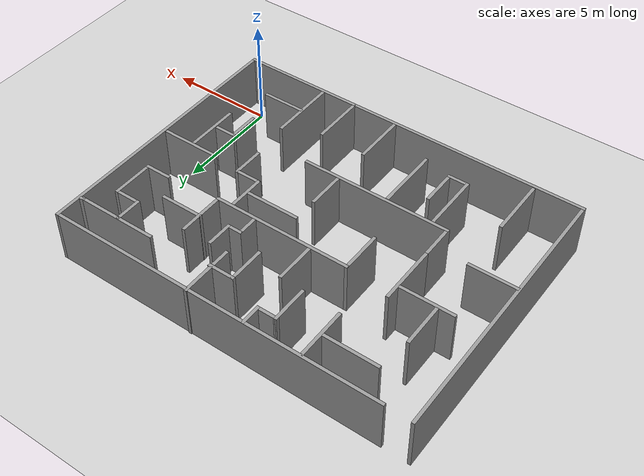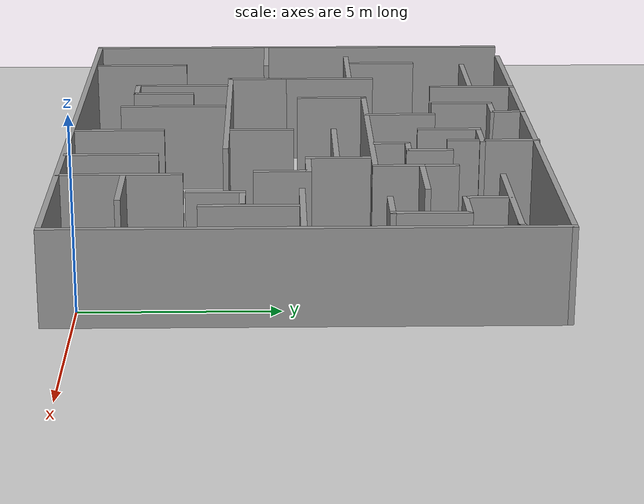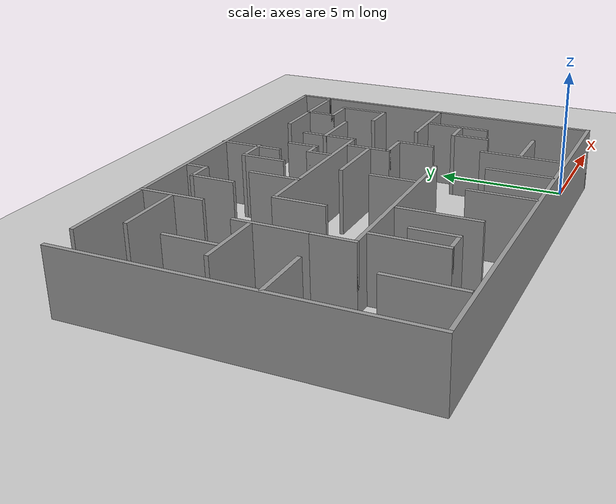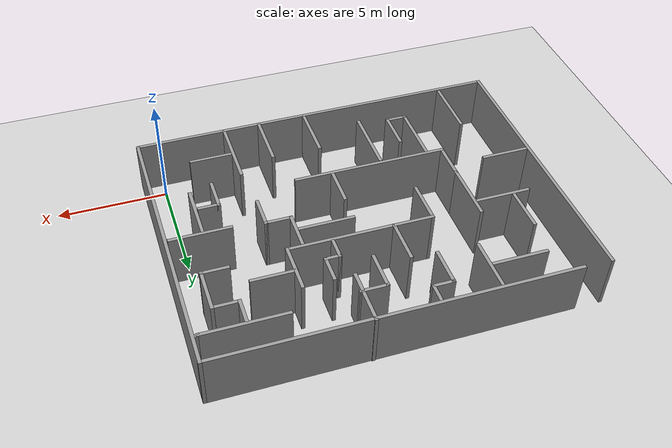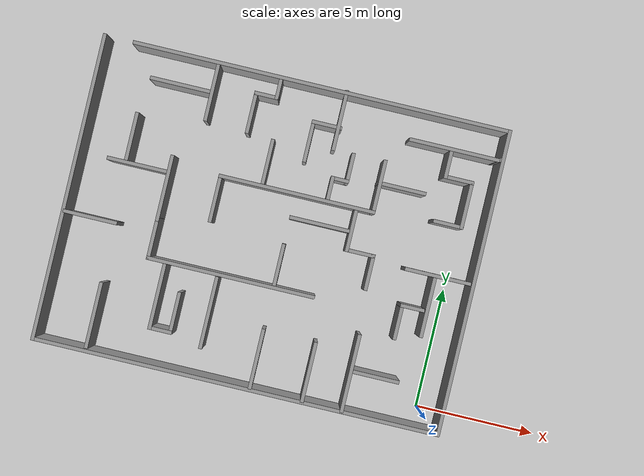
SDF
<sdf version="1.7">
 <world name="default">
  <light name="sun" type="directional">
   <pose>0 0 10 0 -0 0</pose>
   <diffuse>0.8 0.8 0.8 1</diffuse>
   <specular>0.2 0.2 0.2 1</specular>
   <attenuation>
    <range>1000</range>
    <constant>0.9</constant>
    <linear>0.01</linear>
    <quadratic>0.001</quadratic>
   </attenuation>
   <direction>-0.5 0.1 -0.9</direction>
   <spot><inner_angle>0</inner_angle><outer_angle>0</outer_angle><falloff>0</falloff></spot>
  </light>
  <model name="ground_plane">
   <static>1</static>
   <link name="link">
    <collision name="collision">
     <geometry><plane><normal>0 0 1</normal><size>100 100</size></plane></geometry>
     <surface><friction><ode><mu>100</mu><mu2>50</mu2></ode></friction></surface>
    </collision>
    <visual name="visual">
     <cast_shadows>0</cast_shadows>
     <geometry><plane><normal>0 0 1</normal><size>100 100</size></plane></geometry>
     <material>
      <script><uri>file://media/materials/scripts/gazebo.material</uri><name>Gazebo/Grey</name></script>
     </material>
    </visual>
   </link>
  </model>
  <gravity>0 0 -9.8</gravity>
  <magnetic_field>6e-06 2.3e-05 -4.2e-05</magnetic_field>
  <atmosphere type="adiabatic"/>
  <physics type="ode">
   <max_step_size>0.001</max_step_size>
   <real_time_factor>1</real_time_factor>
   <real_time_update_rate>1000</real_time_update_rate>
  </physics>
  <scene><ambient>0.4 0.4 0.4 1</ambient><background>0.7 0.7 0.7 1</background><shadows>1</shadows></scene>
  <audio><device>default</device></audio>
  <spherical_coordinates>
   <surface_model>EARTH_WGS84</surface_model>
   <latitude_deg>0</latitude_deg>
   <longitude_deg>0</longitude_deg>
   <elevation>0</elevation>
   <heading_deg>0</heading_deg>
  </spherical_coordinates>
  <model name="own_made_maze">
   <pose>-7.52865 5.59252 0 0 -0 0</pose>
   <link name="Wall_1">
    <collision name="Wall_1_Collision">
     <geometry><box><size>2.75 0.15 2.5</size></box></geometry>
     <pose>0 0 1.25 0 -0 0</pose>
    </collision>
    <visual name="Wall_1_Visual">
     <pose>0 0 1.25 0 -0 0</pose>
     <geometry><box><size>2.75 0.15 2.5</size></box></geometry>
     <material>
      <script><uri>file://media/materials/scripts/gazebo.material</uri><name>Gazebo/Grey</name></script>
      <ambient>1 1 1 1</ambient>
     </material>
     <meta><layer>0</layer></meta>
    </visual>
    <pose>-4.63332 0.834786 0 0 -0 -1.5708</pose>
   </link>
   <link name="Wall_10">
    <collision name="Wall_10_Collision">
     <geometry><box><size>12.75 0.15 2.5</size></box></geometry>
     <pose>0 0 1.25 0 -0 0</pose>
    </collision>
    <visual name="Wall_10_Visual">
     <pose>0 0 1.25 0 -0 0</pose>
     <geometry><box><size>12.75 0.15 2.5</size></box></geometry>
     <material>
      <script><uri>file://media/materials/scripts/gazebo.material</uri><name>Gazebo/Grey</name></script>
      <ambient>1 1 1 1</ambient>
     </material>
     <meta><layer>0</layer></meta>
    </visual>
    <pose>8.425 -0.017589 0 0 -0 1.5708</pose>
   </link>
   <link name="Wall_11">
    <collision name="Wall_11_Collision">
     <geometry><box><size>15.75 0.15 2.5</size></box></geometry>
     <pose>0 0 1.25 0 -0 0</pose>
    </collision>
    <visual name="Wall_11_Visual">
     <pose>0 0 1.25 0 -0 0</pose>
     <geometry><box><size>15.75 0.15 2.5</size></box></geometry>
     <material>
      <script><uri>file://media/materials/scripts/gazebo.material</uri><name>Gazebo/Grey</name></script>
      <ambient>1 1 1 1</ambient>
     </material>
     <meta><layer>0</layer></meta>
    </visual>
    <pose>0.625 6.28241 0 0 -0 3.14159</pose>
   </link>
   <link name="Wall_13">
    <collision name="Wall_13_Collision">
     <geometry><box><size>1.75 0.15 2.5</size></box></geometry>
     <pose>0 0 1.25 0 -0 0</pose>
    </collision>
    <visual name="Wall_13_Visual">
     <pose>0 0 1.25 0 -0 0</pose>
     <geometry><box><size>1.75 0.15 2.5</size></box></geometry>
     <material>
      <script><uri>file://media/materials/scripts/gazebo.material</uri><name>Gazebo/Grey</name></script>
      <ambient>1 1 1 1</ambient>
     </material>
     <meta><layer>0</layer></meta>
    </visual>
    <pose>-4.63332 -1.26521 0 0 -0 -1.5708</pose>
   </link>
   <link name="Wall_14">
    <collision name="Wall_14_Collision">
     <geometry><box><size>7 0.15 2.5</size></box></geometry>
     <pose>0 0 1.25 0 -0 0</pose>
    </collision>
    <visual name="Wall_14_Visual">
     <pose>0 0 1.25 0 -0 0</pose>
     <geometry><box><size>7 0.15 2.5</size></box></geometry>
     <material>
      <script><uri>file://media/materials/scripts/gazebo.material</uri><name>Gazebo/Grey</name></script>
      <ambient>1 1 1 1</ambient>
     </material>
     <meta><layer>0</layer></meta>
    </visual>
    <pose>-1.20832 -2.06521 0 0 -0 0</pose>
   </link>
   <link name="Wall_17">
    <collision name="Wall_17_Collision">
     <geometry><box><size>1.75 0.15 2.5</size></box></geometry>
     <pose>0 0 1.25 0 -0 0</pose>
    </collision>
    <visual name="Wall_17_Visual">
     <pose>0 0 1.25 0 -0 0</pose>
     <geometry><box><size>1.75 0.15 2.5</size></box></geometry>
     <material>
      <script><uri>file://media/materials/scripts/gazebo.material</uri><name>Gazebo/Grey</name></script>
      <ambient>1 1 1 1</ambient>
     </material>
     <meta><layer>0</layer></meta>
    </visual>
    <pose>0.580763 -1.11424 0 0 -0 1.5708</pose>
   </link>
   <link name="Wall_19">
    <collision name="Wall_19_Collision">
     <geometry><box><size>2 0.15 2.5</size></box></geometry>
     <pose>0 0 1.25 0 -0 0</pose>
    </collision>
    <visual name="Wall_19_Visual">
     <pose>0 0 1.25 0 -0 0</pose>
     <geometry><box><size>2 0.15 2.5</size></box></geometry>
     <material>
      <script><uri>file://media/materials/scripts/gazebo.material</uri><name>Gazebo/Grey</name></script>
      <ambient>1 1 1 1</ambient>
     </material>
     <meta><layer>0</layer></meta>
    </visual>
    <pose>-2.55015 0.910413 0 0 -0 1.5708</pose>
   </link>
   <link name="Wall_20">
    <collision name="Wall_20_Collision">
     <geometry><box><size>6.5 0.15 2.5</size></box></geometry>
     <pose>0 0 1.25 0 -0 0</pose>
    </collision>
    <visual name="Wall_20_Visual">
     <pose>0 0 1.25 0 -0 0</pose>
     <geometry><box><size>6.5 0.15 2.5</size></box></geometry>
     <material>
      <script><uri>file://media/materials/scripts/gazebo.material</uri><name>Gazebo/Grey</name></script>
      <ambient>1 1 1 1</ambient>
     </material>
     <meta><layer>0</layer></meta>
    </visual>
    <pose>0.624853 1.83541 0 0 -0 0</pose>
   </link>
   <link name="Wall_21">
    <collision name="Wall_21_Collision">
     <geometry><box><size>2.25 0.15 2.5</size></box></geometry>
     <pose>0 0 1.25 0 -0 0</pose>
    </collision>
    <visual name="Wall_21_Visual">
     <pose>0 0 1.25 0 -0 0</pose>
     <geometry><box><size>2.25 0.15 2.5</size></box></geometry>
     <material>
      <script><uri>file://media/materials/scripts/gazebo.material</uri><name>Gazebo/Grey</name></script>
      <ambient>1 1 1 1</ambient>
     </material>
     <meta><layer>0</layer></meta>
    </visual>
    <pose>3.79985 2.88541 0 0 -0 1.5708</pose>
   </link>
   <link name="Wall_23">
    <collision name="Wall_23_Collision">
     <geometry><box><size>2 0.15 2.5</size></box></geometry>
     <pose>0 0 1.25 0 -0 0</pose>
    </collision>
    <visual name="Wall_23_Visual">
     <pose>0 0 1.25 0 -0 0</pose>
     <geometry><box><size>2 0.15 2.5</size></box></geometry>
     <material>
      <script><uri>file://media/materials/scripts/gazebo.material</uri><name>Gazebo/Grey</name></script>
      <ambient>1 1 1 1</ambient>
     </material>
     <meta><layer>0</layer></meta>
    </visual>
    <pose>-0.826387 2.77489 0 0 -0 1.5708</pose>
   </link>
   <link name="Wall_27">
    <collision name="Wall_27_Collision">
     <geometry><box><size>2.5 0.15 2.5</size></box></geometry>
     <pose>0 0 1.25 0 -0 0</pose>
    </collision>
    <visual name="Wall_27_Visual">
     <pose>0 0 1.25 0 -0 0</pose>
     <geometry><box><size>2.5 0.15 2.5</size></box></geometry>
     <material>
      <script><uri>file://media/materials/scripts/gazebo.material</uri><name>Gazebo/Grey</name></script>
      <ambient>1 1 1 1</ambient>
     </material>
     <meta><layer>0</layer></meta>
    </visual>
    <pose>-3.67587 5.10741 0 0 -0 -1.5708</pose>
   </link>
   <link name="Wall_29">
    <collision name="Wall_29_Collision">
     <geometry><box><size>2.5 0.15 2.5</size></box></geometry>
     <pose>0 0 1.25 0 -0 0</pose>
    </collision>
    <visual name="Wall_29_Visual">
     <pose>0 0 1.25 0 -0 0</pose>
     <geometry><box><size>2.5 0.15 2.5</size></box></geometry>
     <material>
      <script><uri>file://media/materials/scripts/gazebo.material</uri><name>Gazebo/Grey</name></script>
      <ambient>1 1 1 1</ambient>
     </material>
     <meta><layer>0</layer></meta>
    </visual>
    <pose>1.63613 5.14259 0 0 -0 -1.5708</pose>
   </link>
   <link name="Wall_31">
    <collision name="Wall_31_Collision">
     <geometry><box><size>2.75 0.15 2.5</size></box></geometry>
     <pose>0 0 1.25 0 -0 0</pose>
    </collision>
    <visual name="Wall_31_Visual">
     <pose>0 0 1.25 0 -0 0</pose>
     <geometry><box><size>2.75 0.15 2.5</size></box></geometry>
     <material>
      <script><uri>file://media/materials/scripts/gazebo.material</uri><name>Gazebo/Grey</name></script>
      <ambient>1 1 1 1</ambient>
     </material>
     <meta><layer>0</layer></meta>
    </visual>
    <pose>6.94973 -0.084945 0 0 -0 3.14159</pose>
   </link>
   <link name="Wall_35">
    <collision name="Wall_35_Collision">
     <geometry><box><size>2 0.15 2.5</size></box></geometry>
     <pose>0 0 1.25 0 -0 0</pose>
    </collision>
    <visual name="Wall_35_Visual">
     <pose>0 0 1.25 0 -0 0</pose>
     <geometry><box><size>2 0.15 2.5</size></box></geometry>
     <material>
      <script><uri>file://media/materials/scripts/gazebo.material</uri><name>Gazebo/Grey</name></script>
      <ambient>1 1 1 1</ambient>
     </material>
     <meta><layer>0</layer></meta>
    </visual>
    <pose>4.70703 3.04596 0 0 -0 0</pose>
   </link>
   <link name="Wall_37">
    <collision name="Wall_37_Collision">
     <geometry><box><size>3.75 0.15 2.5</size></box></geometry>
     <pose>0 0 1.25 0 -0 0</pose>
    </collision>
    <visual name="Wall_37_Visual">
     <pose>0 0 1.25 0 -0 0</pose>
     <geometry><box><size>3.75 0.15 2.5</size></box></geometry>
     <material>
      <script><uri>file://media/materials/scripts/gazebo.material</uri><name>Gazebo/Grey</name></script>
      <ambient>1 1 1 1</ambient>
     </material>
     <meta><layer>0</layer></meta>
    </visual>
    <pose>6.41456 5.05115 0 0 -0 3.14159</pose>
   </link>
   <link name="Wall_39">
    <collision name="Wall_39_Collision">
     <geometry><box><size>0.25 0.15 2.5</size></box></geometry>
     <pose>0 0 1.25 0 -0 0</pose>
    </collision>
    <visual name="Wall_39_Visual">
     <pose>0 0 1.25 0 -0 0</pose>
     <geometry><box><size>0.25 0.15 2.5</size></box></geometry>
     <material>
      <script><uri>file://media/materials/scripts/gazebo.material</uri><name>Gazebo/Grey</name></script>
      <ambient>1 1 1 1</ambient>
     </material>
     <meta><layer>0</layer></meta>
    </visual>
    <pose>8.26285 5.0641 0 0 -0 0.261799</pose>
   </link>
   <link name="Wall_41">
    <collision name="Wall_41_Collision">
     <geometry><box><size>3.25 0.15 2.5</size></box></geometry>
     <pose>0 0 1.25 0 -0 0</pose>
    </collision>
    <visual name="Wall_41_Visual">
     <pose>0 0 1.25 0 -0 0</pose>
     <geometry><box><size>3.25 0.15 2.5</size></box></geometry>
     <material>
      <script><uri>file://media/materials/scripts/gazebo.material</uri><name>Gazebo/Grey</name></script>
      <ambient>1 1 1 1</ambient>
     </material>
     <meta><layer>0</layer></meta>
    </visual>
    <pose>4.41525 -4.72641 0 0 -0 1.5708</pose>
   </link>
   <link name="Wall_43">
    <collision name="Wall_43_Collision">
     <geometry><box><size>3 0.15 2.5</size></box></geometry>
     <pose>0 0 1.25 0 -0 0</pose>
    </collision>
    <visual name="Wall_43_Visual">
     <pose>0 0 1.25 0 -0 0</pose>
     <geometry><box><size>3 0.15 2.5</size></box></geometry>
     <material>
      <script><uri>file://media/materials/scripts/gazebo.material</uri><name>Gazebo/Grey</name></script>
      <ambient>1 1 1 1</ambient>
     </material>
     <meta><layer>0</layer></meta>
    </visual>
    <pose>-1.74104 -3.65585 0 0 -0 -1.5708</pose>
   </link>
   <link name="Wall_45">
    <collision name="Wall_45_Collision">
     <geometry><box><size>2.75 0.15 2.5</size></box></geometry>
     <pose>0 0 1.25 0 -0 0</pose>
    </collision>
    <visual name="Wall_45_Visual">
     <pose>0 0 1.25 0 -0 0</pose>
     <geometry><box><size>2.75 0.15 2.5</size></box></geometry>
     <material>
      <script><uri>file://media/materials/scripts/gazebo.material</uri><name>Gazebo/Grey</name></script>
      <ambient>1 1 1 1</ambient>
     </material>
     <meta><layer>0</layer></meta>
    </visual>
    <pose>-6.24392 -4.83569 0 0 -0 1.5708</pose>
   </link>
   <link name="Wall_48">
    <collision name="Wall_48_Collision">
     <geometry><box><size>2.25 0.15 2.5</size></box></geometry>
     <pose>0 0 1.25 0 -0 0</pose>
    </collision>
    <visual name="Wall_48_Visual">
     <pose>0 0 1.25 0 -0 0</pose>
     <geometry><box><size>2.25 0.15 2.5</size></box></geometry>
     <material>
      <script><uri>file://media/materials/scripts/gazebo.material</uri><name>Gazebo/Grey</name></script>
      <ambient>1 1 1 1</ambient>
     </material>
     <meta><layer>0</layer></meta>
    </visual>
    <pose>-7.30464 -0.999593 0 0 -0 0</pose>
   </link>
   <link name="Wall_50">
    <collision name="Wall_50_Collision">
     <geometry><box><size>2.5 0.15 2.5</size></box></geometry>
     <pose>0 0 1.25 0 -0 0</pose>
    </collision>
    <visual name="Wall_50_Visual">
     <pose>0 0 1.25 0 -0 0</pose>
     <geometry><box><size>2.5 0.15 2.5</size></box></geometry>
     <material>
      <script><uri>file://media/materials/scripts/gazebo.material</uri><name>Gazebo/Grey</name></script>
      <ambient>1 1 1 1</ambient>
     </material>
     <meta><layer>0</layer></meta>
    </visual>
    <pose>-5.94141 1.4981 0 0 -0 3.14159</pose>
   </link>
   <link name="Wall_52">
    <collision name="Wall_52_Collision">
     <geometry><box><size>2.5 0.15 2.5</size></box></geometry>
     <pose>0 0 1.25 0 -0 0</pose>
    </collision>
    <visual name="Wall_52_Visual">
     <pose>0 0 1.25 0 -0 0</pose>
     <geometry><box><size>2.5 0.15 2.5</size></box></geometry>
     <material>
      <script><uri>file://media/materials/scripts/gazebo.material</uri><name>Gazebo/Grey</name></script>
      <ambient>1 1 1 1</ambient>
     </material>
     <meta><layer>0</layer></meta>
    </visual>
    <pose>-4.99158 5.05115 0 0 -0 3.14159</pose>
   </link>
   <link name="Wall_54">
    <collision name="Wall_54_Collision">
     <geometry><box><size>2 0.15 2.5</size></box></geometry>
     <pose>0 0 1.25 0 -0 0</pose>
    </collision>
    <visual name="Wall_54_Visual">
     <pose>0 0 1.25 0 -0 0</pose>
     <geometry><box><size>2 0.15 2.5</size></box></geometry>
     <material>
      <script><uri>file://media/materials/scripts/gazebo.material</uri><name>Gazebo/Grey</name></script>
      <ambient>1 1 1 1</ambient>
     </material>
     <meta><layer>0</layer></meta>
    </visual>
    <pose>-6.41981 2.56381 0 0 -0 1.5708</pose>
   </link>
   <link name="Wall_56">
    <collision name="Wall_56_Collision">
     <geometry><box><size>2 0.15 2.5</size></box></geometry>
     <pose>0 0 1.25 0 -0 0</pose>
    </collision>
    <visual name="Wall_56_Visual">
     <pose>0 0 1.25 0 -0 0</pose>
     <geometry><box><size>2 0.15 2.5</size></box></geometry>
     <material>
      <script><uri>file://media/materials/scripts/gazebo.material</uri><name>Gazebo/Grey</name></script>
      <ambient>1 1 1 1</ambient>
     </material>
     <meta><layer>0</layer></meta>
    </visual>
    <pose>5.41061 -4.62301 0 0 -0 0</pose>
   </link>
   <link name="Wall_58">
    <collision name="Wall_58_Collision">
     <geometry><box><size>2.5 0.15 2.5</size></box></geometry>
     <pose>0 0 1.25 0 -0 0</pose>
    </collision>
    <visual name="Wall_58_Visual">
     <pose>0 0 1.25 0 -0 0</pose>
     <geometry><box><size>2.5 0.15 2.5</size></box></geometry>
     <material>
      <script><uri>file://media/materials/scripts/gazebo.material</uri><name>Gazebo/Grey</name></script>
      <ambient>1 1 1 1</ambient>
     </material>
     <meta><layer>0</layer></meta>
    </visual>
    <pose>6.84258 -1.40066 0 0 -0 -1.5708</pose>
   </link>
   <link name="Wall_60">
    <collision name="Wall_60_Collision">
     <geometry><box><size>2.5 0.15 2.5</size></box></geometry>
     <pose>0 0 1.25 0 -0 0</pose>
    </collision>
    <visual name="Wall_60_Visual">
     <pose>0 0 1.25 0 -0 0</pose>
     <geometry><box><size>2.5 0.15 2.5</size></box></geometry>
     <material>
      <script><uri>file://media/materials/scripts/gazebo.material</uri><name>Gazebo/Grey</name></script>
      <ambient>1 1 1 1</ambient>
     </material>
     <meta><layer>0</layer></meta>
    </visual>
    <pose>2.76185 -5.06623 0 0 -0 1.5708</pose>
   </link>
   <link name="Wall_62">
    <collision name="Wall_62_Collision">
     <geometry><box><size>1.75 0.15 2.5</size></box></geometry>
     <pose>0 0 1.25 0 -0 0</pose>
    </collision>
    <visual name="Wall_62_Visual">
     <pose>0 0 1.25 0 -0 0</pose>
     <geometry><box><size>1.75 0.15 2.5</size></box></geometry>
     <material>
      <script><uri>file://media/materials/scripts/gazebo.material</uri><name>Gazebo/Grey</name></script>
      <ambient>1 1 1 1</ambient>
     </material>
     <meta><layer>0</layer></meta>
    </visual>
    <pose>3.11363 0.909172 0 0 -0 -1.5708</pose>
   </link>
   <link name="Wall_63">
    <collision name="Wall_63_Collision">
     <geometry><box><size>1.25 0.15 2.5</size></box></geometry>
     <pose>0 0 1.25 0 -0 0</pose>
    </collision>
    <visual name="Wall_63_Visual">
     <pose>0 0 1.25 0 -0 0</pose>
     <geometry><box><size>1.25 0.15 2.5</size></box></geometry>
     <material>
      <script><uri>file://media/materials/scripts/gazebo.material</uri><name>Gazebo/Grey</name></script>
      <ambient>1 1 1 1</ambient>
     </material>
     <meta><layer>0</layer></meta>
    </visual>
    <pose>3.66363 0.109172 0 0 -0 0</pose>
   </link>
   <link name="Wall_64">
    <collision name="Wall_64_Collision">
     <geometry><box><size>1.5 0.15 2.5</size></box></geometry>
     <pose>0 0 1.25 0 -0 0</pose>
    </collision>
    <visual name="Wall_64_Visual">
     <pose>0 0 1.25 0 -0 0</pose>
     <geometry><box><size>1.5 0.15 2.5</size></box></geometry>
     <material>
      <script><uri>file://media/materials/scripts/gazebo.material</uri><name>Gazebo/Grey</name></script>
      <ambient>1 1 1 1</ambient>
     </material>
     <meta><layer>0</layer></meta>
    </visual>
    <pose>4.21363 -0.565828 0 0 -0 -1.5708</pose>
   </link>
   <link name="Wall_66">
    <collision name="Wall_66_Collision">
     <geometry><box><size>2.5 0.15 2.5</size></box></geometry>
     <pose>0 0 1.25 0 -0 0</pose>
    </collision>
    <visual name="Wall_66_Visual">
     <pose>0 0 1.25 0 -0 0</pose>
     <geometry><box><size>2.5 0.15 2.5</size></box></geometry>
     <material>
      <script><uri>file://media/materials/scripts/gazebo.material</uri><name>Gazebo/Grey</name></script>
      <ambient>1 1 1 1</ambient>
     </material>
     <meta><layer>0</layer></meta>
    </visual>
    <pose>1.79792 0.864882 0 0 -0 3.14159</pose>
   </link>
   <link name="Wall_68">
    <collision name="Wall_68_Collision">
     <geometry><box><size>2.5 0.15 2.5</size></box></geometry>
     <pose>0 0 1.25 0 -0 0</pose>
    </collision>
    <visual name="Wall_68_Visual">
     <pose>0 0 1.25 0 -0 0</pose>
     <geometry><box><size>2.5 0.15 2.5</size></box></geometry>
     <material>
      <script><uri>file://media/materials/scripts/gazebo.material</uri><name>Gazebo/Grey</name></script>
      <ambient>1 1 1 1</ambient>
     </material>
     <meta><layer>0</layer></meta>
    </visual>
    <pose>0.580763 -5.03105 0 0 -0 1.5708</pose>
   </link>
   <link name="Wall_70">
    <collision name="Wall_70_Collision">
     <geometry><box><size>2.75 0.15 2.5</size></box></geometry>
     <pose>0 0 1.25 0 -0 0</pose>
    </collision>
    <visual name="Wall_70_Visual">
     <pose>0 0 1.25 0 -0 0</pose>
     <geometry><box><size>2.75 0.15 2.5</size></box></geometry>
     <material>
      <script><uri>file://media/materials/scripts/gazebo.material</uri><name>Gazebo/Grey</name></script>
      <ambient>1 1 1 1</ambient>
     </material>
     <meta><layer>0</layer></meta>
    </visual>
    <pose>-3.92212 -3.49567 0 0 -0 -1.5708</pose>
   </link>
   <link name="Wall_71">
    <collision name="Wall_71_Collision">
     <geometry><box><size>1 0.15 2.5</size></box></geometry>
     <pose>0 0 1.25 0 -0 0</pose>
    </collision>
    <visual name="Wall_71_Visual">
     <pose>0 0 1.25 0 -0 0</pose>
     <geometry><box><size>1 0.15 2.5</size></box></geometry>
     <material>
      <script><uri>file://media/materials/scripts/gazebo.material</uri><name>Gazebo/Grey</name></script>
      <ambient>1 1 1 1</ambient>
     </material>
     <meta><layer>0</layer></meta>
    </visual>
    <pose>-3.49712 -4.79567 0 0 -0 0</pose>
   </link>
   <link name="Wall_72">
    <collision name="Wall_72_Collision">
     <geometry><box><size>1.75 0.15 2.5</size></box></geometry>
     <pose>0 0 1.25 0 -0 0</pose>
    </collision>
    <visual name="Wall_72_Visual">
     <pose>0 0 1.25 0 -0 0</pose>
     <geometry><box><size>1.75 0.15 2.5</size></box></geometry>
     <material>
      <script><uri>file://media/materials/scripts/gazebo.material</uri><name>Gazebo/Grey</name></script>
      <ambient>1 1 1 1</ambient>
     </material>
     <meta><layer>0</layer></meta>
    </visual>
    <pose>-3.07212 -3.99567 0 0 -0 1.5708</pose>
   </link>
   <link name="Wall_74">
    <collision name="Wall_74_Collision">
     <geometry><box><size>1.25 0.15 2.5</size></box></geometry>
     <pose>0 0 1.25 0 -0 0</pose>
    </collision>
    <visual name="Wall_74_Visual">
     <pose>0 0 1.25 0 -0 0</pose>
     <geometry><box><size>1.25 0.15 2.5</size></box></geometry>
     <material>
      <script><uri>file://media/materials/scripts/gazebo.material</uri><name>Gazebo/Grey</name></script>
      <ambient>1 1 1 1</ambient>
     </material>
     <meta><layer>0</layer></meta>
    </visual>
    <pose>6.3149 4.46598 0 0 -0 -1.5708</pose>
   </link>
   <link name="Wall_75">
    <collision name="Wall_75_Collision">
     <geometry><box><size>1.25 0.15 2.5</size></box></geometry>
     <pose>0 0 1.25 0 -0 0</pose>
    </collision>
    <visual name="Wall_75_Visual">
     <pose>0 0 1.25 0 -0 0</pose>
     <geometry><box><size>1.25 0.15 2.5</size></box></geometry>
     <material>
      <script><uri>file://media/materials/scripts/gazebo.material</uri><name>Gazebo/Grey</name></script>
      <ambient>1 1 1 1</ambient>
     </material>
     <meta><layer>0</layer></meta>
    </visual>
    <pose>6.8649 3.91597 0 0 -0 0</pose>
   </link>
   <link name="Wall_76">
    <collision name="Wall_76_Collision">
     <geometry><box><size>2 0.15 2.5</size></box></geometry>
     <pose>0 0 1.25 0 -0 0</pose>
    </collision>
    <visual name="Wall_76_Visual">
     <pose>0 0 1.25 0 -0 0</pose>
     <geometry><box><size>2 0.15 2.5</size></box></geometry>
     <material>
      <script><uri>file://media/materials/scripts/gazebo.material</uri><name>Gazebo/Grey</name></script>
      <ambient>1 1 1 1</ambient>
     </material>
     <meta><layer>0</layer></meta>
    </visual>
    <pose>7.4149 2.99098 0 0 -0 -1.5708</pose>
   </link>
   <link name="Wall_77">
    <collision name="Wall_77_Collision">
     <geometry><box><size>1.25 0.15 2.5</size></box></geometry>
     <pose>0 0 1.25 0 -0 0</pose>
    </collision>
    <visual name="Wall_77_Visual">
     <pose>0 0 1.25 0 -0 0</pose>
     <geometry><box><size>1.25 0.15 2.5</size></box></geometry>
     <material>
      <script><uri>file://media/materials/scripts/gazebo.material</uri><name>Gazebo/Grey</name></script>
      <ambient>1 1 1 1</ambient>
     </material>
     <meta><layer>0</layer></meta>
    </visual>
    <pose>6.8649 2.06598 0 0 -0 3.14159</pose>
   </link>
   <link name="Wall_79">
    <collision name="Wall_79_Collision">
     <geometry><box><size>1 0.15 2.5</size></box></geometry>
     <pose>0 0 1.25 0 -0 0</pose>
    </collision>
    <visual name="Wall_79_Visual">
     <pose>0 0 1.25 0 -0 0</pose>
     <geometry><box><size>1 0.15 2.5</size></box></geometry>
     <material>
      <script><uri>file://media/materials/scripts/gazebo.material</uri><name>Gazebo/Grey</name></script>
      <ambient>1 1 1 1</ambient>
     </material>
     <meta><layer>0</layer></meta>
    </visual>
    <pose>6.24169 -1.56245 0 0 -0 3.14159</pose>
   </link>
   <link name="Wall_8">
    <collision name="Wall_8_Collision">
     <geometry><box><size>12.75 0.15 2.5</size></box></geometry>
     <pose>0 0 1.25 0 -0 0</pose>
    </collision>
    <visual name="Wall_8_Visual">
     <pose>0 0 1.25 0 -0 0</pose>
     <geometry><box><size>12.75 0.15 2.5</size></box></geometry>
     <material>
      <script><uri>file://media/materials/scripts/gazebo.material</uri><name>Gazebo/Grey</name></script>
      <ambient>1 1 1 1</ambient>
     </material>
     <meta><layer>0</layer></meta>
    </visual>
    <pose>-8.425 -0.017589 0 0 -0 -1.5708</pose>
   </link>
   <link name="Wall_80">
    <collision name="Wall_80_Collision">
     <geometry><box><size>1.5 0.15 2.5</size></box></geometry>
     <pose>0 0 1.25 0 -0 0</pose>
    </collision>
    <visual name="Wall_80_Visual">
     <pose>0 0 1.25 0 -0 0</pose>
     <geometry><box><size>1.5 0.15 2.5</size></box></geometry>
     <material>
      <script><uri>file://media/materials/scripts/gazebo.material</uri><name>Gazebo/Grey</name></script>
      <ambient>1 1 1 1</ambient>
     </material>
     <meta><layer>0</layer></meta>
    </visual>
    <pose>5.81669 -2.23745 0 0 -0 -1.5708</pose>
   </link>
   <link name="Wall_83">
    <collision name="Wall_83_Collision">
     <geometry><box><size>1 0.15 2.5</size></box></geometry>
     <pose>0 0 1.25 0 -0 0</pose>
    </collision>
    <visual name="Wall_83_Visual">
     <pose>0 0 1.25 0 -0 0</pose>
     <geometry><box><size>1 0.15 2.5</size></box></geometry>
     <material>
      <script><uri>file://media/materials/scripts/gazebo.material</uri><name>Gazebo/Grey</name></script>
      <ambient>1 1 1 1</ambient>
     </material>
     <meta><layer>0</layer></meta>
    </visual>
    <pose>-1.07264 5.85741 0 0 -0 -1.5708</pose>
   </link>
   <link name="Wall_84">
    <collision name="Wall_84_Collision">
     <geometry><box><size>1 0.15 2.5</size></box></geometry>
     <pose>0 0 1.25 0 -0 0</pose>
    </collision>
    <visual name="Wall_84_Visual">
     <pose>0 0 1.25 0 -0 0</pose>
     <geometry><box><size>1 0.15 2.5</size></box></geometry>
     <material>
      <script><uri>file://media/materials/scripts/gazebo.material</uri><name>Gazebo/Grey</name></script>
      <ambient>1 1 1 1</ambient>
     </material>
     <meta><layer>0</layer></meta>
    </visual>
    <pose>-1.49764 5.43241 0 0 -0 3.14159</pose>
   </link>
   <link name="Wall_85">
    <collision name="Wall_85_Collision">
     <geometry><box><size>1.75 0.15 2.5</size></box></geometry>
     <pose>0 0 1.25 0 -0 0</pose>
    </collision>
    <visual name="Wall_85_Visual">
     <pose>0 0 1.25 0 -0 0</pose>
     <geometry><box><size>1.75 0.15 2.5</size></box></geometry>
     <material>
      <script><uri>file://media/materials/scripts/gazebo.material</uri><name>Gazebo/Grey</name></script>
      <ambient>1 1 1 1</ambient>
     </material>
     <meta><layer>0</layer></meta>
    </visual>
    <pose>-1.92264 4.63241 0 0 -0 -1.5708</pose>
   </link>
   <link name="Wall_87">
    <collision name="Wall_87_Collision">
     <geometry><box><size>1.25 0.15 2.5</size></box></geometry>
     <pose>0 0 1.25 0 -0 0</pose>
    </collision>
    <visual name="Wall_87_Visual">
     <pose>0 0 1.25 0 -0 0</pose>
     <geometry><box><size>1.25 0.15 2.5</size></box></geometry>
     <material>
      <script><uri>file://media/materials/scripts/gazebo.material</uri><name>Gazebo/Grey</name></script>
      <ambient>1 1 1 1</ambient>
     </material>
     <meta><layer>0</layer></meta>
    </visual>
    <pose>1.15648 4.84008 0 0 -0 3.14159</pose>
   </link>
   <link name="Wall_88">
    <collision name="Wall_88_Collision">
     <geometry><box><size>1.75 0.15 2.5</size></box></geometry>
     <pose>0 0 1.25 0 -0 0</pose>
    </collision>
    <visual name="Wall_88_Visual">
     <pose>0 0 1.25 0 -0 0</pose>
     <geometry><box><size>1.75 0.15 2.5</size></box></geometry>
     <material>
      <script><uri>file://media/materials/scripts/gazebo.material</uri><name>Gazebo/Grey</name></script>
      <ambient>1 1 1 1</ambient>
     </material>
     <meta><layer>0</layer></meta>
    </visual>
    <pose>0.606484 4.04008 0 0 -0 -1.5708</pose>
   </link>
   <link name="Wall_9">
    <collision name="Wall_9_Collision">
     <geometry><box><size>17 0.15 2.5</size></box></geometry>
     <pose>0 0 1.25 0 -0 0</pose>
    </collision>
    <visual name="Wall_9_Visual">
     <pose>0 0 1.25 0 -0 0</pose>
     <geometry><box><size>17 0.15 2.5</size></box></geometry>
     <material>
      <script><uri>file://media/materials/scripts/gazebo.material</uri><name>Gazebo/Grey</name></script>
      <ambient>1 1 1 1</ambient>
     </material>
     <meta><layer>0</layer></meta>
    </visual>
    <pose>-0 -6.31759 0 0 -0 0</pose>
   </link>
   <link name="Wall_91">
    <collision name="Wall_91_Collision">
     <geometry><box><size>1 0.15 2.5</size></box></geometry>
     <pose>0 0 1.25 0 -0 0</pose>
    </collision>
    <visual name="Wall_91_Visual">
     <pose>0 0 1.25 0 -0 0</pose>
     <geometry><box><size>1 0.15 2.5</size></box></geometry>
     <material>
      <script><uri>file://media/materials/scripts/gazebo.material</uri><name>Gazebo/Grey</name></script>
      <ambient>1 1 1 1</ambient>
     </material>
     <meta><layer>0</layer></meta>
    </visual>
    <pose>1.88238 2.38042 0 0 -0 1.5708</pose>
   </link>
   <link name="Wall_92">
    <collision name="Wall_92_Collision">
     <geometry><box><size>0.75 0.15 2.5</size></box></geometry>
     <pose>0 0 1.25 0 -0 0</pose>
    </collision>
    <visual name="Wall_92_Visual">
     <pose>0 0 1.25 0 -0 0</pose>
     <geometry><box><size>0.75 0.15 2.5</size></box></geometry>
     <material>
      <script><uri>file://media/materials/scripts/gazebo.material</uri><name>Gazebo/Grey</name></script>
      <ambient>1 1 1 1</ambient>
     </material>
     <meta><layer>0</layer></meta>
    </visual>
    <pose>2.18238 2.80542 0 0 -0 0</pose>
   </link>
   <link name="Wall_93">
    <collision name="Wall_93_Collision">
     <geometry><box><size>1.25 0.15 2.5</size></box></geometry>
     <pose>0 0 1.25 0 -0 0</pose>
    </collision>
    <visual name="Wall_93_Visual">
     <pose>0 0 1.25 0 -0 0</pose>
     <geometry><box><size>1.25 0.15 2.5</size></box></geometry>
     <material>
      <script><uri>file://media/materials/scripts/gazebo.material</uri><name>Gazebo/Grey</name></script>
      <ambient>1 1 1 1</ambient>
     </material>
     <meta><layer>0</layer></meta>
    </visual>
    <pose>2.48238 3.35542 0 0 -0 1.5708</pose>
   </link>
   <static>1</static>
  </model>
 </world>
</sdf>
